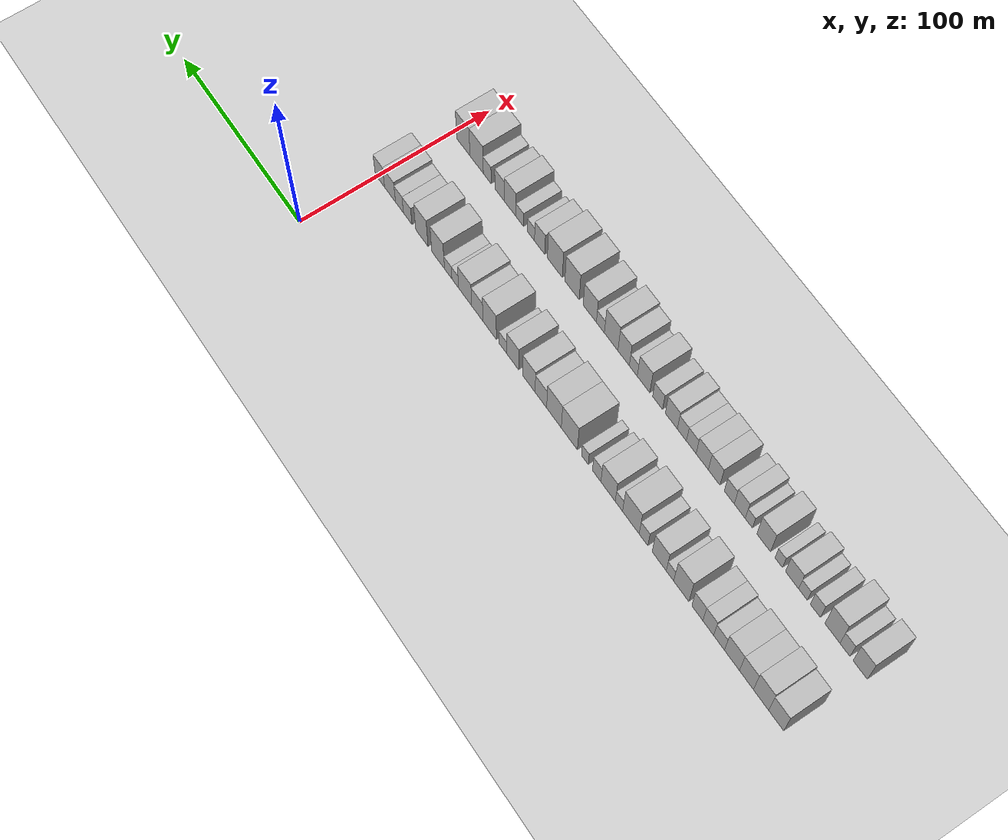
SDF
<sdf version="1.6">
 <world name="default">
  <include><name>ground_plane_1</name><uri>model://HANNAS_ground_plane</uri></include>
  <model name="building_1">
   <static>1</static>
   <pose>50.0000 -293.0404 0 0.000000 0.000000 0.000000</pose>
   <link name="link">
    <pose>0 0 10.50 0 0 0</pose>
    <collision name="collision"><geometry><box><size>20.0000 9.9192 21.0000</size></box></geometry></collision>
    <visual name="visual">
     <cast_shadows>0</cast_shadows>
     <geometry><box><size>20.0000 9.9192 21.0000</size></box></geometry>
     <material>
      <script>
       <uri>model://HANNAS_wall/materials/scripts</uri>
       <uri>model://HANNAS_wall/materials/textures</uri>
       <name>vrc/HANNAS_wall</name>
      </script>
     </material>
    </visual>
   </link>
  </model>
  <model name="building_2">
   <static>1</static>
   <pose>50.0000 -283.0995 0 0.000000 0.000000 0.000000</pose>
   <link name="link">
    <pose>0 0 12.00 0 0 0</pose>
    <collision name="collision"><geometry><box><size>20.0000 9.9627 24.0000</size></box></geometry></collision>
    <visual name="visual">
     <cast_shadows>0</cast_shadows>
     <geometry><box><size>20.0000 9.9627 24.0000</size></box></geometry>
     <material>
      <script>
       <uri>model://HANNAS_wall/materials/scripts</uri>
       <uri>model://HANNAS_wall/materials/textures</uri>
       <name>vrc/HANNAS_wall</name>
      </script>
     </material>
    </visual>
   </link>
  </model>
  <model name="building_3">
   <static>1</static>
   <pose>50.0000 -273.4754 0 0.000000 0.000000 0.000000</pose>
   <link name="link">
    <pose>0 0 10.50 0 0 0</pose>
    <collision name="collision"><geometry><box><size>20.0000 9.2853 21.0000</size></box></geometry></collision>
    <visual name="visual">
     <cast_shadows>0</cast_shadows>
     <geometry><box><size>20.0000 9.2853 21.0000</size></box></geometry>
     <material>
      <script>
       <uri>model://HANNAS_wall/materials/scripts</uri>
       <uri>model://HANNAS_wall/materials/textures</uri>
       <name>vrc/HANNAS_wall</name>
      </script>
     </material>
    </visual>
   </link>
  </model>
  <model name="building_4">
   <static>1</static>
   <pose>50.0000 -263.8147 0 0.000000 0.000000 0.000000</pose>
   <link name="link">
    <pose>0 0 10.50 0 0 0</pose>
    <collision name="collision"><geometry><box><size>20.0000 10.0361 21.0000</size></box></geometry></collision>
    <visual name="visual">
     <cast_shadows>0</cast_shadows>
     <geometry><box><size>20.0000 10.0361 21.0000</size></box></geometry>
     <material>
      <script>
       <uri>model://HANNAS_wall/materials/scripts</uri>
       <uri>model://HANNAS_wall/materials/textures</uri>
       <name>vrc/HANNAS_wall</name>
      </script>
     </material>
    </visual>
   </link>
  </model>
  <model name="building_5">
   <static>1</static>
   <pose>50.0000 -255.1313 0 0.000000 0.000000 0.000000</pose>
   <link name="link">
    <pose>0 0 7.50 0 0 0</pose>
    <collision name="collision"><geometry><box><size>20.0000 7.3308 15.0000</size></box></geometry></collision>
    <visual name="visual">
     <cast_shadows>0</cast_shadows>
     <geometry><box><size>20.0000 7.3308 15.0000</size></box></geometry>
     <material>
      <script>
       <uri>model://HANNAS_wall/materials/scripts</uri>
       <uri>model://HANNAS_wall/materials/textures</uri>
       <name>vrc/HANNAS_wall</name>
      </script>
     </material>
    </visual>
   </link>
  </model>
  <model name="building_6">
   <static>1</static>
   <pose>50.0000 -247.8303 0 0.000000 0.000000 0.000000</pose>
   <link name="link">
    <pose>0 0 9.00 0 0 0</pose>
    <collision name="collision"><geometry><box><size>20.0000 7.2713 18.0000</size></box></geometry></collision>
    <visual name="visual">
     <cast_shadows>0</cast_shadows>
     <geometry><box><size>20.0000 7.2713 18.0000</size></box></geometry>
     <material>
      <script>
       <uri>model://HANNAS_wall/materials/scripts</uri>
       <uri>model://HANNAS_wall/materials/textures</uri>
       <name>vrc/HANNAS_wall</name>
      </script>
     </material>
    </visual>
   </link>
  </model>
  <model name="building_7">
   <static>1</static>
   <pose>50.0000 -240.4107 0 0.000000 0.000000 0.000000</pose>
   <link name="link">
    <pose>0 0 9.00 0 0 0</pose>
    <collision name="collision"><geometry><box><size>20.0000 7.5679 18.0000</size></box></geometry></collision>
    <visual name="visual">
     <cast_shadows>0</cast_shadows>
     <geometry><box><size>20.0000 7.5679 18.0000</size></box></geometry>
     <material>
      <script>
       <uri>model://HANNAS_wall/materials/scripts</uri>
       <uri>model://HANNAS_wall/materials/textures</uri>
       <name>vrc/HANNAS_wall</name>
      </script>
     </material>
    </visual>
   </link>
  </model>
  <model name="building_8">
   <static>1</static>
   <pose>50.0000 -229.4162 0 0.000000 0.000000 0.000000</pose>
   <link name="link">
    <pose>0 0 12.00 0 0 0</pose>
    <collision name="collision"><geometry><box><size>20.0000 10.4211 24.0000</size></box></geometry></collision>
    <visual name="visual">
     <cast_shadows>0</cast_shadows>
     <geometry><box><size>20.0000 10.4211 24.0000</size></box></geometry>
     <material>
      <script>
       <uri>model://HANNAS_wall/materials/scripts</uri>
       <uri>model://HANNAS_wall/materials/textures</uri>
       <name>vrc/HANNAS_wall</name>
      </script>
     </material>
    </visual>
   </link>
  </model>
  <model name="building_9">
   <static>1</static>
   <pose>50.0000 -221.6135 0 0.000000 0.000000 0.000000</pose>
   <link name="link">
    <pose>0 0 6.00 0 0 0</pose>
    <collision name="collision"><geometry><box><size>20.0000 5.1843 12.0000</size></box></geometry></collision>
    <visual name="visual">
     <cast_shadows>0</cast_shadows>
     <geometry><box><size>20.0000 5.1843 12.0000</size></box></geometry>
     <material>
      <script>
       <uri>model://HANNAS_wall/materials/scripts</uri>
       <uri>model://HANNAS_wall/materials/textures</uri>
       <name>vrc/HANNAS_wall</name>
      </script>
     </material>
    </visual>
   </link>
  </model>
  <model name="building_10">
   <static>1</static>
   <pose>50.0000 -214.1070 0 0.000000 0.000000 0.000000</pose>
   <link name="link">
    <pose>0 0 10.50 0 0 0</pose>
    <collision name="collision"><geometry><box><size>20.0000 9.8287 21.0000</size></box></geometry></collision>
    <visual name="visual">
     <cast_shadows>0</cast_shadows>
     <geometry><box><size>20.0000 9.8287 21.0000</size></box></geometry>
     <material>
      <script>
       <uri>model://HANNAS_wall/materials/scripts</uri>
       <uri>model://HANNAS_wall/materials/textures</uri>
       <name>vrc/HANNAS_wall</name>
      </script>
     </material>
    </visual>
   </link>
  </model>
  <model name="building_11">
   <static>1</static>
   <pose>50.0000 -203.1111 0 0.000000 0.000000 0.000000</pose>
   <link name="link">
    <pose>0 0 7.50 0 0 0</pose>
    <collision name="collision"><geometry><box><size>20.0000 6.1631 15.0000</size></box></geometry></collision>
    <visual name="visual">
     <cast_shadows>0</cast_shadows>
     <geometry><box><size>20.0000 6.1631 15.0000</size></box></geometry>
     <material>
      <script>
       <uri>model://HANNAS_wall/materials/scripts</uri>
       <uri>model://HANNAS_wall/materials/textures</uri>
       <name>vrc/HANNAS_wall</name>
      </script>
     </material>
    </visual>
   </link>
  </model>
  <model name="building_12">
   <static>1</static>
   <pose>50.0000 -194.1699 0 0.000000 0.000000 0.000000</pose>
   <link name="link">
    <pose>0 0 12.00 0 0 0</pose>
    <collision name="collision"><geometry><box><size>20.0000 11.7193 24.0000</size></box></geometry></collision>
    <visual name="visual">
     <cast_shadows>0</cast_shadows>
     <geometry><box><size>20.0000 11.7193 24.0000</size></box></geometry>
     <material>
      <script>
       <uri>model://HANNAS_wall/materials/scripts</uri>
       <uri>model://HANNAS_wall/materials/textures</uri>
       <name>vrc/HANNAS_wall</name>
      </script>
     </material>
    </visual>
   </link>
  </model>
  <model name="building_13">
   <static>1</static>
   <pose>50.0000 -185.6866 0 0.000000 0.000000 0.000000</pose>
   <link name="link">
    <pose>0 0 6.00 0 0 0</pose>
    <collision name="collision"><geometry><box><size>20.0000 5.2473 12.0000</size></box></geometry></collision>
    <visual name="visual">
     <cast_shadows>0</cast_shadows>
     <geometry><box><size>20.0000 5.2473 12.0000</size></box></geometry>
     <material>
      <script>
       <uri>model://HANNAS_wall/materials/scripts</uri>
       <uri>model://HANNAS_wall/materials/textures</uri>
       <name>vrc/HANNAS_wall</name>
      </script>
     </material>
    </visual>
   </link>
  </model>
  <model name="building_14">
   <static>1</static>
   <pose>50.0000 -177.9145 0 0.000000 0.000000 0.000000</pose>
   <link name="link">
    <pose>0 0 10.50 0 0 0</pose>
    <collision name="collision"><geometry><box><size>20.0000 10.2970 21.0000</size></box></geometry></collision>
    <visual name="visual">
     <cast_shadows>0</cast_shadows>
     <geometry><box><size>20.0000 10.2970 21.0000</size></box></geometry>
     <material>
      <script>
       <uri>model://HANNAS_wall/materials/scripts</uri>
       <uri>model://HANNAS_wall/materials/textures</uri>
       <name>vrc/HANNAS_wall</name>
      </script>
     </material>
    </visual>
   </link>
  </model>
  <model name="building_15">
   <static>1</static>
   <pose>50.0000 -169.6922 0 0.000000 0.000000 0.000000</pose>
   <link name="link">
    <pose>0 0 7.50 0 0 0</pose>
    <collision name="collision"><geometry><box><size>20.0000 6.1476 15.0000</size></box></geometry></collision>
    <visual name="visual">
     <cast_shadows>0</cast_shadows>
     <geometry><box><size>20.0000 6.1476 15.0000</size></box></geometry>
     <material>
      <script>
       <uri>model://HANNAS_wall/materials/scripts</uri>
       <uri>model://HANNAS_wall/materials/textures</uri>
       <name>vrc/HANNAS_wall</name>
      </script>
     </material>
    </visual>
   </link>
  </model>
  <model name="building_16">
   <static>1</static>
   <pose>50.0000 -161.1644 0 0.000000 0.000000 0.000000</pose>
   <link name="link">
    <pose>0 0 6.00 0 0 0</pose>
    <collision name="collision"><geometry><box><size>20.0000 4.9079 12.0000</size></box></geometry></collision>
    <visual name="visual">
     <cast_shadows>0</cast_shadows>
     <geometry><box><size>20.0000 4.9079 12.0000</size></box></geometry>
     <material>
      <script>
       <uri>model://HANNAS_wall/materials/scripts</uri>
       <uri>model://HANNAS_wall/materials/textures</uri>
       <name>vrc/HANNAS_wall</name>
      </script>
     </material>
    </visual>
   </link>
  </model>
  <model name="building_17">
   <static>1</static>
   <pose>50.0000 -149.8009 0 0.000000 0.000000 0.000000</pose>
   <link name="link">
    <pose>0 0 12.00 0 0 0</pose>
    <collision name="collision"><geometry><box><size>20.0000 11.8191 24.0000</size></box></geometry></collision>
    <visual name="visual">
     <cast_shadows>0</cast_shadows>
     <geometry><box><size>20.0000 11.8191 24.0000</size></box></geometry>
     <material>
      <script>
       <uri>model://HANNAS_wall/materials/scripts</uri>
       <uri>model://HANNAS_wall/materials/textures</uri>
       <name>vrc/HANNAS_wall</name>
      </script>
     </material>
    </visual>
   </link>
  </model>
  <model name="building_18">
   <static>1</static>
   <pose>50.0000 -138.4631 0 0.000000 0.000000 0.000000</pose>
   <link name="link">
    <pose>0 0 12.00 0 0 0</pose>
    <collision name="collision"><geometry><box><size>20.0000 10.8565 24.0000</size></box></geometry></collision>
    <visual name="visual">
     <cast_shadows>0</cast_shadows>
     <geometry><box><size>20.0000 10.8565 24.0000</size></box></geometry>
     <material>
      <script>
       <uri>model://HANNAS_wall/materials/scripts</uri>
       <uri>model://HANNAS_wall/materials/textures</uri>
       <name>vrc/HANNAS_wall</name>
      </script>
     </material>
    </visual>
   </link>
  </model>
  <model name="building_19">
   <static>1</static>
   <pose>50.0000 -128.7146 0 0.000000 0.000000 0.000000</pose>
   <link name="link">
    <pose>0 0 9.00 0 0 0</pose>
    <collision name="collision"><geometry><box><size>20.0000 8.6404 18.0000</size></box></geometry></collision>
    <visual name="visual">
     <cast_shadows>0</cast_shadows>
     <geometry><box><size>20.0000 8.6404 18.0000</size></box></geometry>
     <material>
      <script>
       <uri>model://HANNAS_wall/materials/scripts</uri>
       <uri>model://HANNAS_wall/materials/textures</uri>
       <name>vrc/HANNAS_wall</name>
      </script>
     </material>
    </visual>
   </link>
  </model>
  <model name="building_20">
   <static>1</static>
   <pose>50.0000 -119.7162 0 0.000000 0.000000 0.000000</pose>
   <link name="link">
    <pose>0 0 10.50 0 0 0</pose>
    <collision name="collision"><geometry><box><size>20.0000 9.3563 21.0000</size></box></geometry></collision>
    <visual name="visual">
     <cast_shadows>0</cast_shadows>
     <geometry><box><size>20.0000 9.3563 21.0000</size></box></geometry>
     <material>
      <script>
       <uri>model://HANNAS_wall/materials/scripts</uri>
       <uri>model://HANNAS_wall/materials/textures</uri>
       <name>vrc/HANNAS_wall</name>
      </script>
     </material>
    </visual>
   </link>
  </model>
  <model name="building_21">
   <static>1</static>
   <pose>50.0000 -107.5606 0 0.000000 0.000000 0.000000</pose>
   <link name="link">
    <pose>0 0 10.50 0 0 0</pose>
    <collision name="collision"><geometry><box><size>20.0000 8.9550 21.0000</size></box></geometry></collision>
    <visual name="visual">
     <cast_shadows>0</cast_shadows>
     <geometry><box><size>20.0000 8.9550 21.0000</size></box></geometry>
     <material>
      <script>
       <uri>model://HANNAS_wall/materials/scripts</uri>
       <uri>model://HANNAS_wall/materials/textures</uri>
       <name>vrc/HANNAS_wall</name>
      </script>
     </material>
    </visual>
   </link>
  </model>
  <model name="building_22">
   <static>1</static>
   <pose>50.0000 -100.0929 0 0.000000 0.000000 0.000000</pose>
   <link name="link">
    <pose>0 0 6.00 0 0 0</pose>
    <collision name="collision"><geometry><box><size>20.0000 5.9805 12.0000</size></box></geometry></collision>
    <visual name="visual">
     <cast_shadows>0</cast_shadows>
     <geometry><box><size>20.0000 5.9805 12.0000</size></box></geometry>
     <material>
      <script>
       <uri>model://HANNAS_wall/materials/scripts</uri>
       <uri>model://HANNAS_wall/materials/textures</uri>
       <name>vrc/HANNAS_wall</name>
      </script>
     </material>
    </visual>
   </link>
  </model>
  <model name="building_23">
   <static>1</static>
   <pose>50.0000 -89.9068 0 0.000000 0.000000 0.000000</pose>
   <link name="link">
    <pose>0 0 12.00 0 0 0</pose>
    <collision name="collision"><geometry><box><size>20.0000 10.3917 24.0000</size></box></geometry></collision>
    <visual name="visual">
     <cast_shadows>0</cast_shadows>
     <geometry><box><size>20.0000 10.3917 24.0000</size></box></geometry>
     <material>
      <script>
       <uri>model://HANNAS_wall/materials/scripts</uri>
       <uri>model://HANNAS_wall/materials/textures</uri>
       <name>vrc/HANNAS_wall</name>
      </script>
     </material>
    </visual>
   </link>
  </model>
  <model name="building_24">
   <static>1</static>
   <pose>50.0000 -80.3440 0 0.000000 0.000000 0.000000</pose>
   <link name="link">
    <pose>0 0 9.00 0 0 0</pose>
    <collision name="collision"><geometry><box><size>20.0000 8.7340 18.0000</size></box></geometry></collision>
    <visual name="visual">
     <cast_shadows>0</cast_shadows>
     <geometry><box><size>20.0000 8.7340 18.0000</size></box></geometry>
     <material>
      <script>
       <uri>model://HANNAS_wall/materials/scripts</uri>
       <uri>model://HANNAS_wall/materials/textures</uri>
       <name>vrc/HANNAS_wall</name>
      </script>
     </material>
    </visual>
   </link>
  </model>
  <model name="building_25">
   <static>1</static>
   <pose>50.0000 -70.8512 0 0.000000 0.000000 0.000000</pose>
   <link name="link">
    <pose>0 0 10.50 0 0 0</pose>
    <collision name="collision"><geometry><box><size>20.0000 10.2515 21.0000</size></box></geometry></collision>
    <visual name="visual">
     <cast_shadows>0</cast_shadows>
     <geometry><box><size>20.0000 10.2515 21.0000</size></box></geometry>
     <material>
      <script>
       <uri>model://HANNAS_wall/materials/scripts</uri>
       <uri>model://HANNAS_wall/materials/textures</uri>
       <name>vrc/HANNAS_wall</name>
      </script>
     </material>
    </visual>
   </link>
  </model>
  <model name="building_26">
   <static>1</static>
   <pose>50.0000 -63.0987 0 0.000000 0.000000 0.000000</pose>
   <link name="link">
    <pose>0 0 6.00 0 0 0</pose>
    <collision name="collision"><geometry><box><size>20.0000 5.2537 12.0000</size></box></geometry></collision>
    <visual name="visual">
     <cast_shadows>0</cast_shadows>
     <geometry><box><size>20.0000 5.2537 12.0000</size></box></geometry>
     <material>
      <script>
       <uri>model://HANNAS_wall/materials/scripts</uri>
       <uri>model://HANNAS_wall/materials/textures</uri>
       <name>vrc/HANNAS_wall</name>
      </script>
     </material>
    </visual>
   </link>
  </model>
  <model name="building_27">
   <static>1</static>
   <pose>50.0000 -57.5809 0 0.000000 0.000000 0.000000</pose>
   <link name="link">
    <pose>0 0 6.00 0 0 0</pose>
    <collision name="collision"><geometry><box><size>20.0000 5.7818 12.0000</size></box></geometry></collision>
    <visual name="visual">
     <cast_shadows>0</cast_shadows>
     <geometry><box><size>20.0000 5.7818 12.0000</size></box></geometry>
     <material>
      <script>
       <uri>model://HANNAS_wall/materials/scripts</uri>
       <uri>model://HANNAS_wall/materials/textures</uri>
       <name>vrc/HANNAS_wall</name>
      </script>
     </material>
    </visual>
   </link>
  </model>
  <model name="building_28">
   <static>1</static>
   <pose>50.0000 -49.6364 0 0.000000 0.000000 0.000000</pose>
   <link name="link">
    <pose>0 0 12.00 0 0 0</pose>
    <collision name="collision"><geometry><box><size>20.0000 10.1071 24.0000</size></box></geometry></collision>
    <visual name="visual">
     <cast_shadows>0</cast_shadows>
     <geometry><box><size>20.0000 10.1071 24.0000</size></box></geometry>
     <material>
      <script>
       <uri>model://HANNAS_wall/materials/scripts</uri>
       <uri>model://HANNAS_wall/materials/textures</uri>
       <name>vrc/HANNAS_wall</name>
      </script>
     </material>
    </visual>
   </link>
  </model>
  <model name="building_29">
   <static>1</static>
   <pose>50.0000 -36.6501 0 0.000000 0.000000 0.000000</pose>
   <link name="link">
    <pose>0 0 12.00 0 0 0</pose>
    <collision name="collision"><geometry><box><size>20.0000 9.8655 24.0000</size></box></geometry></collision>
    <visual name="visual">
     <cast_shadows>0</cast_shadows>
     <geometry><box><size>20.0000 9.8655 24.0000</size></box></geometry>
     <material>
      <script>
       <uri>model://HANNAS_wall/materials/scripts</uri>
       <uri>model://HANNAS_wall/materials/textures</uri>
       <name>vrc/HANNAS_wall</name>
      </script>
     </material>
    </visual>
   </link>
  </model>
  <model name="building_30">
   <static>1</static>
   <pose>50.0000 -25.2569 0 0.000000 0.000000 0.000000</pose>
   <link name="link">
    <pose>0 0 7.50 0 0 0</pose>
    <collision name="collision"><geometry><box><size>20.0000 6.9210 15.0000</size></box></geometry></collision>
    <visual name="visual">
     <cast_shadows>0</cast_shadows>
     <geometry><box><size>20.0000 6.9210 15.0000</size></box></geometry>
     <material>
      <script>
       <uri>model://HANNAS_wall/materials/scripts</uri>
       <uri>model://HANNAS_wall/materials/textures</uri>
       <name>vrc/HANNAS_wall</name>
      </script>
     </material>
    </visual>
   </link>
  </model>
  <model name="building_31">
   <static>1</static>
   <pose>50.0000 -18.5693 0 0.000000 0.000000 0.000000</pose>
   <link name="link">
    <pose>0 0 7.50 0 0 0</pose>
    <collision name="collision"><geometry><box><size>20.0000 6.4541 15.0000</size></box></geometry></collision>
    <visual name="visual">
     <cast_shadows>0</cast_shadows>
     <geometry><box><size>20.0000 6.4541 15.0000</size></box></geometry>
     <material>
      <script>
       <uri>model://HANNAS_wall/materials/scripts</uri>
       <uri>model://HANNAS_wall/materials/textures</uri>
       <name>vrc/HANNAS_wall</name>
      </script>
     </material>
    </visual>
   </link>
  </model>
  <model name="building_32">
   <static>1</static>
   <pose>50.0000 -10.8621 0 0.000000 0.000000 0.000000</pose>
   <link name="link">
    <pose>0 0 9.00 0 0 0</pose>
    <collision name="collision"><geometry><box><size>20.0000 8.9603 18.0000</size></box></geometry></collision>
    <visual name="visual">
     <cast_shadows>0</cast_shadows>
     <geometry><box><size>20.0000 8.9603 18.0000</size></box></geometry>
     <material>
      <script>
       <uri>model://HANNAS_wall/materials/scripts</uri>
       <uri>model://HANNAS_wall/materials/textures</uri>
       <name>vrc/HANNAS_wall</name>
      </script>
     </material>
    </visual>
   </link>
  </model>
  <model name="building_33">
   <static>1</static>
   <pose>50.0000 -2.5638 0 0.000000 0.000000 0.000000</pose>
   <link name="link">
    <pose>0 0 9.00 0 0 0</pose>
    <collision name="collision"><geometry><box><size>20.0000 7.6363 18.0000</size></box></geometry></collision>
    <visual name="visual">
     <cast_shadows>0</cast_shadows>
     <geometry><box><size>20.0000 7.6363 18.0000</size></box></geometry>
     <material>
      <script>
       <uri>model://HANNAS_wall/materials/scripts</uri>
       <uri>model://HANNAS_wall/materials/textures</uri>
       <name>vrc/HANNAS_wall</name>
      </script>
     </material>
    </visual>
   </link>
  </model>
  <model name="building_67">
   <static>1</static>
   <pose>90.0000 -295.4142 0 0.000000 0.000000 0.000000</pose>
   <link name="link">
    <pose>0 0 10.50 0 0 0</pose>
    <collision name="collision"><geometry><box><size>20.0000 9.1716 21.0000</size></box></geometry></collision>
    <visual name="visual">
     <cast_shadows>0</cast_shadows>
     <geometry><box><size>20.0000 9.1716 21.0000</size></box></geometry>
     <material>
      <script>
       <uri>model://HANNAS_wall/materials/scripts</uri>
       <uri>model://HANNAS_wall/materials/textures</uri>
       <name>vrc/HANNAS_wall</name>
      </script>
     </material>
    </visual>
   </link>
  </model>
  <model name="building_68">
   <static>1</static>
   <pose>90.0000 -285.5895 0 0.000000 0.000000 0.000000</pose>
   <link name="link">
    <pose>0 0 7.50 0 0 0</pose>
    <collision name="collision"><geometry><box><size>20.0000 6.4778 15.0000</size></box></geometry></collision>
    <visual name="visual">
     <cast_shadows>0</cast_shadows>
     <geometry><box><size>20.0000 6.4778 15.0000</size></box></geometry>
     <material>
      <script>
       <uri>model://HANNAS_wall/materials/scripts</uri>
       <uri>model://HANNAS_wall/materials/textures</uri>
       <name>vrc/HANNAS_wall</name>
      </script>
     </material>
    </visual>
   </link>
  </model>
  <model name="building_69">
   <static>1</static>
   <pose>90.0000 -277.4108 0 0.000000 0.000000 0.000000</pose>
   <link name="link">
    <pose>0 0 12.00 0 0 0</pose>
    <collision name="collision"><geometry><box><size>20.0000 9.8797 24.0000</size></box></geometry></collision>
    <visual name="visual">
     <cast_shadows>0</cast_shadows>
     <geometry><box><size>20.0000 9.8797 24.0000</size></box></geometry>
     <material>
      <script>
       <uri>model://HANNAS_wall/materials/scripts</uri>
       <uri>model://HANNAS_wall/materials/textures</uri>
       <name>vrc/HANNAS_wall</name>
      </script>
     </material>
    </visual>
   </link>
  </model>
  <model name="building_70">
   <static>1</static>
   <pose>90.0000 -266.1713 0 0.000000 0.000000 0.000000</pose>
   <link name="link">
    <pose>0 0 7.50 0 0 0</pose>
    <collision name="collision"><geometry><box><size>20.0000 6.5992 15.0000</size></box></geometry></collision>
    <visual name="visual">
     <cast_shadows>0</cast_shadows>
     <geometry><box><size>20.0000 6.5992 15.0000</size></box></geometry>
     <material>
      <script>
       <uri>model://HANNAS_wall/materials/scripts</uri>
       <uri>model://HANNAS_wall/materials/textures</uri>
       <name>vrc/HANNAS_wall</name>
      </script>
     </material>
    </visual>
   </link>
  </model>
  <model name="building_71">
   <static>1</static>
   <pose>90.0000 -257.9831 0 0.000000 0.000000 0.000000</pose>
   <link name="link">
    <pose>0 0 6.00 0 0 0</pose>
    <collision name="collision"><geometry><box><size>20.0000 5.7771 12.0000</size></box></geometry></collision>
    <visual name="visual">
     <cast_shadows>0</cast_shadows>
     <geometry><box><size>20.0000 5.7771 12.0000</size></box></geometry>
     <material>
      <script>
       <uri>model://HANNAS_wall/materials/scripts</uri>
       <uri>model://HANNAS_wall/materials/textures</uri>
       <name>vrc/HANNAS_wall</name>
      </script>
     </material>
    </visual>
   </link>
  </model>
  <model name="building_72">
   <static>1</static>
   <pose>90.0000 -250.7016 0 0.000000 0.000000 0.000000</pose>
   <link name="link">
    <pose>0 0 9.00 0 0 0</pose>
    <collision name="collision"><geometry><box><size>20.0000 8.7860 18.0000</size></box></geometry></collision>
    <visual name="visual">
     <cast_shadows>0</cast_shadows>
     <geometry><box><size>20.0000 8.7860 18.0000</size></box></geometry>
     <material>
      <script>
       <uri>model://HANNAS_wall/materials/scripts</uri>
       <uri>model://HANNAS_wall/materials/textures</uri>
       <name>vrc/HANNAS_wall</name>
      </script>
     </material>
    </visual>
   </link>
  </model>
  <model name="building_73">
   <static>1</static>
   <pose>90.0000 -241.7718 0 0.000000 0.000000 0.000000</pose>
   <link name="link">
    <pose>0 0 6.00 0 0 0</pose>
    <collision name="collision"><geometry><box><size>20.0000 5.0735 12.0000</size></box></geometry></collision>
    <visual name="visual">
     <cast_shadows>0</cast_shadows>
     <geometry><box><size>20.0000 5.0735 12.0000</size></box></geometry>
     <material>
      <script>
       <uri>model://HANNAS_wall/materials/scripts</uri>
       <uri>model://HANNAS_wall/materials/textures</uri>
       <name>vrc/HANNAS_wall</name>
      </script>
     </material>
    </visual>
   </link>
  </model>
  <model name="building_74">
   <static>1</static>
   <pose>90.0000 -231.5800 0 0.000000 0.000000 0.000000</pose>
   <link name="link">
    <pose>0 0 10.50 0 0 0</pose>
    <collision name="collision"><geometry><box><size>20.0000 9.3101 21.0000</size></box></geometry></collision>
    <visual name="visual">
     <cast_shadows>0</cast_shadows>
     <geometry><box><size>20.0000 9.3101 21.0000</size></box></geometry>
     <material>
      <script>
       <uri>model://HANNAS_wall/materials/scripts</uri>
       <uri>model://HANNAS_wall/materials/textures</uri>
       <name>vrc/HANNAS_wall</name>
      </script>
     </material>
    </visual>
   </link>
  </model>
  <model name="building_75">
   <static>1</static>
   <pose>90.0000 -221.4597 0 0.000000 0.000000 0.000000</pose>
   <link name="link">
    <pose>0 0 6.00 0 0 0</pose>
    <collision name="collision"><geometry><box><size>20.0000 4.9305 12.0000</size></box></geometry></collision>
    <visual name="visual">
     <cast_shadows>0</cast_shadows>
     <geometry><box><size>20.0000 4.9305 12.0000</size></box></geometry>
     <material>
      <script>
       <uri>model://HANNAS_wall/materials/scripts</uri>
       <uri>model://HANNAS_wall/materials/textures</uri>
       <name>vrc/HANNAS_wall</name>
      </script>
     </material>
    </visual>
   </link>
  </model>
  <model name="building_76">
   <static>1</static>
   <pose>90.0000 -215.1835 0 0.000000 0.000000 0.000000</pose>
   <link name="link">
    <pose>0 0 9.00 0 0 0</pose>
    <collision name="collision"><geometry><box><size>20.0000 7.6220 18.0000</size></box></geometry></collision>
    <visual name="visual">
     <cast_shadows>0</cast_shadows>
     <geometry><box><size>20.0000 7.6220 18.0000</size></box></geometry>
     <material>
      <script>
       <uri>model://HANNAS_wall/materials/scripts</uri>
       <uri>model://HANNAS_wall/materials/textures</uri>
       <name>vrc/HANNAS_wall</name>
      </script>
     </material>
    </visual>
   </link>
  </model>
  <model name="building_77">
   <static>1</static>
   <pose>90.0000 -207.9220 0 0.000000 0.000000 0.000000</pose>
   <link name="link">
    <pose>0 0 7.50 0 0 0</pose>
    <collision name="collision"><geometry><box><size>20.0000 6.9011 15.0000</size></box></geometry></collision>
    <visual name="visual">
     <cast_shadows>0</cast_shadows>
     <geometry><box><size>20.0000 6.9011 15.0000</size></box></geometry>
     <material>
      <script>
       <uri>model://HANNAS_wall/materials/scripts</uri>
       <uri>model://HANNAS_wall/materials/textures</uri>
       <name>vrc/HANNAS_wall</name>
      </script>
     </material>
    </visual>
   </link>
  </model>
  <model name="building_78">
   <static>1</static>
   <pose>90.0000 -197.4068 0 0.000000 0.000000 0.000000</pose>
   <link name="link">
    <pose>0 0 9.00 0 0 0</pose>
    <collision name="collision"><geometry><box><size>20.0000 8.1294 18.0000</size></box></geometry></collision>
    <visual name="visual">
     <cast_shadows>0</cast_shadows>
     <geometry><box><size>20.0000 8.1294 18.0000</size></box></geometry>
     <material>
      <script>
       <uri>model://HANNAS_wall/materials/scripts</uri>
       <uri>model://HANNAS_wall/materials/textures</uri>
       <name>vrc/HANNAS_wall</name>
      </script>
     </material>
    </visual>
   </link>
  </model>
  <model name="building_79">
   <static>1</static>
   <pose>90.0000 -189.0302 0 0.000000 0.000000 0.000000</pose>
   <link name="link">
    <pose>0 0 9.00 0 0 0</pose>
    <collision name="collision"><geometry><box><size>20.0000 8.6239 18.0000</size></box></geometry></collision>
    <visual name="visual">
     <cast_shadows>0</cast_shadows>
     <geometry><box><size>20.0000 8.6239 18.0000</size></box></geometry>
     <material>
      <script>
       <uri>model://HANNAS_wall/materials/scripts</uri>
       <uri>model://HANNAS_wall/materials/textures</uri>
       <name>vrc/HANNAS_wall</name>
      </script>
     </material>
    </visual>
   </link>
  </model>
  <model name="building_80">
   <static>1</static>
   <pose>90.0000 -181.2900 0 0.000000 0.000000 0.000000</pose>
   <link name="link">
    <pose>0 0 7.50 0 0 0</pose>
    <collision name="collision"><geometry><box><size>20.0000 6.8565 15.0000</size></box></geometry></collision>
    <visual name="visual">
     <cast_shadows>0</cast_shadows>
     <geometry><box><size>20.0000 6.8565 15.0000</size></box></geometry>
     <material>
      <script>
       <uri>model://HANNAS_wall/materials/scripts</uri>
       <uri>model://HANNAS_wall/materials/textures</uri>
       <name>vrc/HANNAS_wall</name>
      </script>
     </material>
    </visual>
   </link>
  </model>
  <model name="building_81">
   <static>1</static>
   <pose>90.0000 -174.6318 0 0.000000 0.000000 0.000000</pose>
   <link name="link">
    <pose>0 0 7.50 0 0 0</pose>
    <collision name="collision"><geometry><box><size>20.0000 6.4598 15.0000</size></box></geometry></collision>
    <visual name="visual">
     <cast_shadows>0</cast_shadows>
     <geometry><box><size>20.0000 6.4598 15.0000</size></box></geometry>
     <material>
      <script>
       <uri>model://HANNAS_wall/materials/scripts</uri>
       <uri>model://HANNAS_wall/materials/textures</uri>
       <name>vrc/HANNAS_wall</name>
      </script>
     </material>
    </visual>
   </link>
  </model>
  <model name="building_82">
   <static>1</static>
   <pose>90.0000 -167.1063 0 0.000000 0.000000 0.000000</pose>
   <link name="link">
    <pose>0 0 9.00 0 0 0</pose>
    <collision name="collision"><geometry><box><size>20.0000 8.5912 18.0000</size></box></geometry></collision>
    <visual name="visual">
     <cast_shadows>0</cast_shadows>
     <geometry><box><size>20.0000 8.5912 18.0000</size></box></geometry>
     <material>
      <script>
       <uri>model://HANNAS_wall/materials/scripts</uri>
       <uri>model://HANNAS_wall/materials/textures</uri>
       <name>vrc/HANNAS_wall</name>
      </script>
     </material>
    </visual>
   </link>
  </model>
  <model name="building_83">
   <static>1</static>
   <pose>90.0000 -157.2214 0 0.000000 0.000000 0.000000</pose>
   <link name="link">
    <pose>0 0 7.50 0 0 0</pose>
    <collision name="collision"><geometry><box><size>20.0000 7.1785 15.0000</size></box></geometry></collision>
    <visual name="visual">
     <cast_shadows>0</cast_shadows>
     <geometry><box><size>20.0000 7.1785 15.0000</size></box></geometry>
     <material>
      <script>
       <uri>model://HANNAS_wall/materials/scripts</uri>
       <uri>model://HANNAS_wall/materials/textures</uri>
       <name>vrc/HANNAS_wall</name>
      </script>
     </material>
    </visual>
   </link>
  </model>
  <model name="building_84">
   <static>1</static>
   <pose>90.0000 -147.0576 0 0.000000 0.000000 0.000000</pose>
   <link name="link">
    <pose>0 0 10.50 0 0 0</pose>
    <collision name="collision"><geometry><box><size>20.0000 9.1492 21.0000</size></box></geometry></collision>
    <visual name="visual">
     <cast_shadows>0</cast_shadows>
     <geometry><box><size>20.0000 9.1492 21.0000</size></box></geometry>
     <material>
      <script>
       <uri>model://HANNAS_wall/materials/scripts</uri>
       <uri>model://HANNAS_wall/materials/textures</uri>
       <name>vrc/HANNAS_wall</name>
      </script>
     </material>
    </visual>
   </link>
  </model>
  <model name="building_85">
   <static>1</static>
   <pose>90.0000 -139.5971 0 0.000000 0.000000 0.000000</pose>
   <link name="link">
    <pose>0 0 6.00 0 0 0</pose>
    <collision name="collision"><geometry><box><size>20.0000 5.7717 12.0000</size></box></geometry></collision>
    <visual name="visual">
     <cast_shadows>0</cast_shadows>
     <geometry><box><size>20.0000 5.7717 12.0000</size></box></geometry>
     <material>
      <script>
       <uri>model://HANNAS_wall/materials/scripts</uri>
       <uri>model://HANNAS_wall/materials/textures</uri>
       <name>vrc/HANNAS_wall</name>
      </script>
     </material>
    </visual>
   </link>
  </model>
  <model name="building_86">
   <static>1</static>
   <pose>90.0000 -132.5098 0 0.000000 0.000000 0.000000</pose>
   <link name="link">
    <pose>0 0 10.50 0 0 0</pose>
    <collision name="collision"><geometry><box><size>20.0000 8.4030 21.0000</size></box></geometry></collision>
    <visual name="visual">
     <cast_shadows>0</cast_shadows>
     <geometry><box><size>20.0000 8.4030 21.0000</size></box></geometry>
     <material>
      <script>
       <uri>model://HANNAS_wall/materials/scripts</uri>
       <uri>model://HANNAS_wall/materials/textures</uri>
       <name>vrc/HANNAS_wall</name>
      </script>
     </material>
    </visual>
   </link>
  </model>
  <model name="building_87">
   <static>1</static>
   <pose>90.0000 -123.2694 0 0.000000 0.000000 0.000000</pose>
   <link name="link">
    <pose>0 0 12.00 0 0 0</pose>
    <collision name="collision"><geometry><box><size>20.0000 10.0779 24.0000</size></box></geometry></collision>
    <visual name="visual">
     <cast_shadows>0</cast_shadows>
     <geometry><box><size>20.0000 10.0779 24.0000</size></box></geometry>
     <material>
      <script>
       <uri>model://HANNAS_wall/materials/scripts</uri>
       <uri>model://HANNAS_wall/materials/textures</uri>
       <name>vrc/HANNAS_wall</name>
      </script>
     </material>
    </visual>
   </link>
  </model>
  <model name="building_88">
   <static>1</static>
   <pose>90.0000 -115.2477 0 0.000000 0.000000 0.000000</pose>
   <link name="link">
    <pose>0 0 6.00 0 0 0</pose>
    <collision name="collision"><geometry><box><size>20.0000 5.9656 12.0000</size></box></geometry></collision>
    <visual name="visual">
     <cast_shadows>0</cast_shadows>
     <geometry><box><size>20.0000 5.9656 12.0000</size></box></geometry>
     <material>
      <script>
       <uri>model://HANNAS_wall/materials/scripts</uri>
       <uri>model://HANNAS_wall/materials/textures</uri>
       <name>vrc/HANNAS_wall</name>
      </script>
     </material>
    </visual>
   </link>
  </model>
  <model name="building_89">
   <static>1</static>
   <pose>90.0000 -107.3011 0 0.000000 0.000000 0.000000</pose>
   <link name="link">
    <pose>0 0 10.50 0 0 0</pose>
    <collision name="collision"><geometry><box><size>20.0000 9.9275 21.0000</size></box></geometry></collision>
    <visual name="visual">
     <cast_shadows>0</cast_shadows>
     <geometry><box><size>20.0000 9.9275 21.0000</size></box></geometry>
     <material>
      <script>
       <uri>model://HANNAS_wall/materials/scripts</uri>
       <uri>model://HANNAS_wall/materials/textures</uri>
       <name>vrc/HANNAS_wall</name>
      </script>
     </material>
    </visual>
   </link>
  </model>
  <model name="building_90">
   <static>1</static>
   <pose>90.0000 -93.9456 0 0.000000 0.000000 0.000000</pose>
   <link name="link">
    <pose>0 0 12.00 0 0 0</pose>
    <collision name="collision"><geometry><box><size>20.0000 10.7835 24.0000</size></box></geometry></collision>
    <visual name="visual">
     <cast_shadows>0</cast_shadows>
     <geometry><box><size>20.0000 10.7835 24.0000</size></box></geometry>
     <material>
      <script>
       <uri>model://HANNAS_wall/materials/scripts</uri>
       <uri>model://HANNAS_wall/materials/textures</uri>
       <name>vrc/HANNAS_wall</name>
      </script>
     </material>
    </visual>
   </link>
  </model>
  <model name="building_91">
   <static>1</static>
   <pose>90.0000 -80.8506 0 0.000000 0.000000 0.000000</pose>
   <link name="link">
    <pose>0 0 12.00 0 0 0</pose>
    <collision name="collision"><geometry><box><size>20.0000 11.4065 24.0000</size></box></geometry></collision>
    <visual name="visual">
     <cast_shadows>0</cast_shadows>
     <geometry><box><size>20.0000 11.4065 24.0000</size></box></geometry>
     <material>
      <script>
       <uri>model://HANNAS_wall/materials/scripts</uri>
       <uri>model://HANNAS_wall/materials/textures</uri>
       <name>vrc/HANNAS_wall</name>
      </script>
     </material>
    </visual>
   </link>
  </model>
  <model name="building_92">
   <static>1</static>
   <pose>90.0000 -69.1650 0 0.000000 0.000000 0.000000</pose>
   <link name="link">
    <pose>0 0 9.00 0 0 0</pose>
    <collision name="collision"><geometry><box><size>20.0000 7.9647 18.0000</size></box></geometry></collision>
    <visual name="visual">
     <cast_shadows>0</cast_shadows>
     <geometry><box><size>20.0000 7.9647 18.0000</size></box></geometry>
     <material>
      <script>
       <uri>model://HANNAS_wall/materials/scripts</uri>
       <uri>model://HANNAS_wall/materials/textures</uri>
       <name>vrc/HANNAS_wall</name>
      </script>
     </material>
    </visual>
   </link>
  </model>
  <model name="building_93">
   <static>1</static>
   <pose>90.0000 -62.4390 0 0.000000 0.000000 0.000000</pose>
   <link name="link">
    <pose>0 0 6.00 0 0 0</pose>
    <collision name="collision"><geometry><box><size>20.0000 5.4875 12.0000</size></box></geometry></collision>
    <visual name="visual">
     <cast_shadows>0</cast_shadows>
     <geometry><box><size>20.0000 5.4875 12.0000</size></box></geometry>
     <material>
      <script>
       <uri>model://HANNAS_wall/materials/scripts</uri>
       <uri>model://HANNAS_wall/materials/textures</uri>
       <name>vrc/HANNAS_wall</name>
      </script>
     </material>
    </visual>
   </link>
  </model>
  <model name="building_94">
   <static>1</static>
   <pose>90.0000 -53.7036 0 0.000000 0.000000 0.000000</pose>
   <link name="link">
    <pose>0 0 6.00 0 0 0</pose>
    <collision name="collision"><geometry><box><size>20.0000 5.9832 12.0000</size></box></geometry></collision>
    <visual name="visual">
     <cast_shadows>0</cast_shadows>
     <geometry><box><size>20.0000 5.9832 12.0000</size></box></geometry>
     <material>
      <script>
       <uri>model://HANNAS_wall/materials/scripts</uri>
       <uri>model://HANNAS_wall/materials/textures</uri>
       <name>vrc/HANNAS_wall</name>
      </script>
     </material>
    </visual>
   </link>
  </model>
  <model name="building_95">
   <static>1</static>
   <pose>90.0000 -46.0482 0 0.000000 0.000000 0.000000</pose>
   <link name="link">
    <pose>0 0 10.50 0 0 0</pose>
    <collision name="collision"><geometry><box><size>20.0000 9.3277 21.0000</size></box></geometry></collision>
    <visual name="visual">
     <cast_shadows>0</cast_shadows>
     <geometry><box><size>20.0000 9.3277 21.0000</size></box></geometry>
     <material>
      <script>
       <uri>model://HANNAS_wall/materials/scripts</uri>
       <uri>model://HANNAS_wall/materials/textures</uri>
       <name>vrc/HANNAS_wall</name>
      </script>
     </material>
    </visual>
   </link>
  </model>
  <model name="building_96">
   <static>1</static>
   <pose>90.0000 -37.7677 0 0.000000 0.000000 0.000000</pose>
   <link name="link">
    <pose>0 0 9.00 0 0 0</pose>
    <collision name="collision"><geometry><box><size>20.0000 7.2333 18.0000</size></box></geometry></collision>
    <visual name="visual">
     <cast_shadows>0</cast_shadows>
     <geometry><box><size>20.0000 7.2333 18.0000</size></box></geometry>
     <material>
      <script>
       <uri>model://HANNAS_wall/materials/scripts</uri>
       <uri>model://HANNAS_wall/materials/textures</uri>
       <name>vrc/HANNAS_wall</name>
      </script>
     </material>
    </visual>
   </link>
  </model>
  <model name="building_97">
   <static>1</static>
   <pose>90.0000 -28.0220 0 0.000000 0.000000 0.000000</pose>
   <link name="link">
    <pose>0 0 7.50 0 0 0</pose>
    <collision name="collision"><geometry><box><size>20.0000 6.2581 15.0000</size></box></geometry></collision>
    <visual name="visual">
     <cast_shadows>0</cast_shadows>
     <geometry><box><size>20.0000 6.2581 15.0000</size></box></geometry>
     <material>
      <script>
       <uri>model://HANNAS_wall/materials/scripts</uri>
       <uri>model://HANNAS_wall/materials/textures</uri>
       <name>vrc/HANNAS_wall</name>
      </script>
     </material>
    </visual>
   </link>
  </model>
  <model name="building_98">
   <static>1</static>
   <pose>90.0000 -19.5076 0 0.000000 0.000000 0.000000</pose>
   <link name="link">
    <pose>0 0 12.00 0 0 0</pose>
    <collision name="collision"><geometry><box><size>20.0000 10.7706 24.0000</size></box></geometry></collision>
    <visual name="visual">
     <cast_shadows>0</cast_shadows>
     <geometry><box><size>20.0000 10.7706 24.0000</size></box></geometry>
     <material>
      <script>
       <uri>model://HANNAS_wall/materials/scripts</uri>
       <uri>model://HANNAS_wall/materials/textures</uri>
       <name>vrc/HANNAS_wall</name>
      </script>
     </material>
    </visual>
   </link>
  </model>
  <model name="building_99">
   <static>1</static>
   <pose>90.0000 -8.7491 0 0.000000 0.000000 0.000000</pose>
   <link name="link">
    <pose>0 0 12.00 0 0 0</pose>
    <collision name="collision"><geometry><box><size>20.0000 10.7464 24.0000</size></box></geometry></collision>
    <visual name="visual">
     <cast_shadows>0</cast_shadows>
     <geometry><box><size>20.0000 10.7464 24.0000</size></box></geometry>
     <material>
      <script>
       <uri>model://HANNAS_wall/materials/scripts</uri>
       <uri>model://HANNAS_wall/materials/textures</uri>
       <name>vrc/HANNAS_wall</name>
      </script>
     </material>
    </visual>
   </link>
  </model>
 </world>
</sdf>
